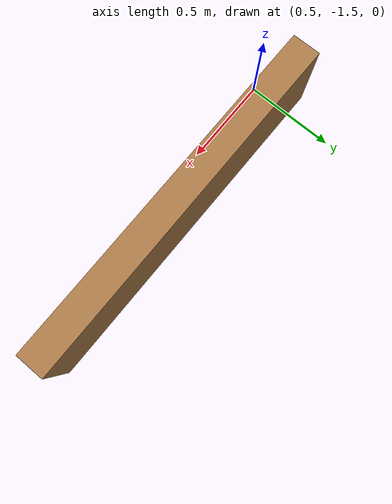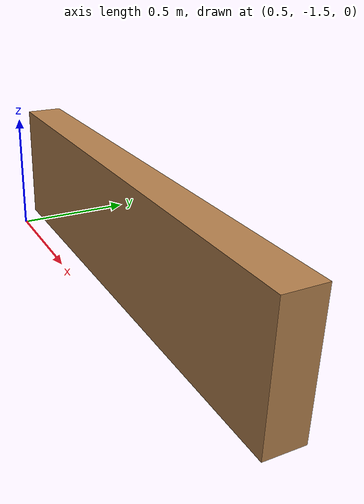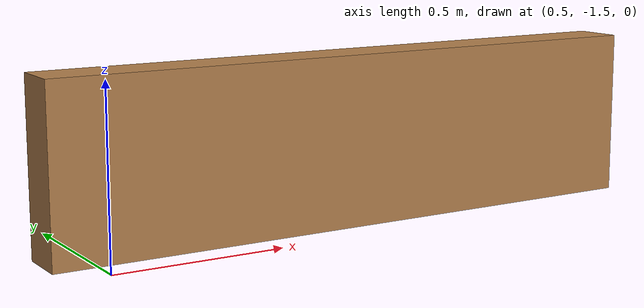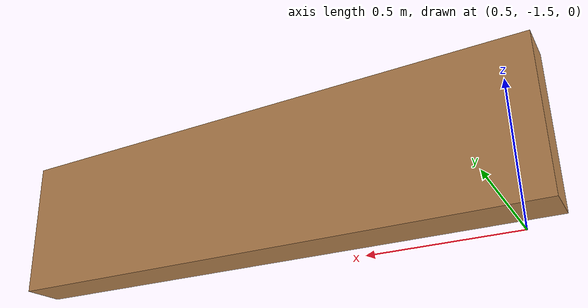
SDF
<?xml version='1.0'?>
<sdf version='1.7'>
  <model name='FUSTA1'>
    <pose>1.1375 -0.7075 0 0 -0 0</pose>
    <link name='Wall_0'>
      <collision name='Wall_0_Collision'>
        <geometry>
          <box>
            <size>1.9 0.15 0.5</size>
          </box>
        </geometry>
        <pose>0 0 0.25 0 -0 0</pose>
      </collision>
      <visual name='Wall_0_Visual'>
        <pose>0 0 0.25 0 -0 0</pose>
        <geometry>
          <box>
            <size>1.9 0.15 0.5</size>
          </box>
        </geometry>
        <material>
          <script>
            <uri>file://media/materials/scripts/gazebo.material</uri>
            <name>Gazebo/Wood</name>
          </script>
          <ambient>1 1 1 1</ambient>
        </material>
        <meta>
          <layer>0</layer>
        </meta>
      </visual>
      <pose>0.1875 -0.6325 0 0 -0 0</pose>
    </link>
    <static>1</static>
  </model>
</sdf>
